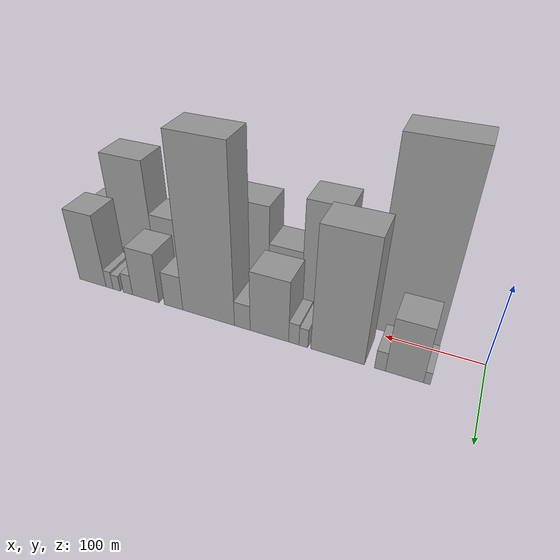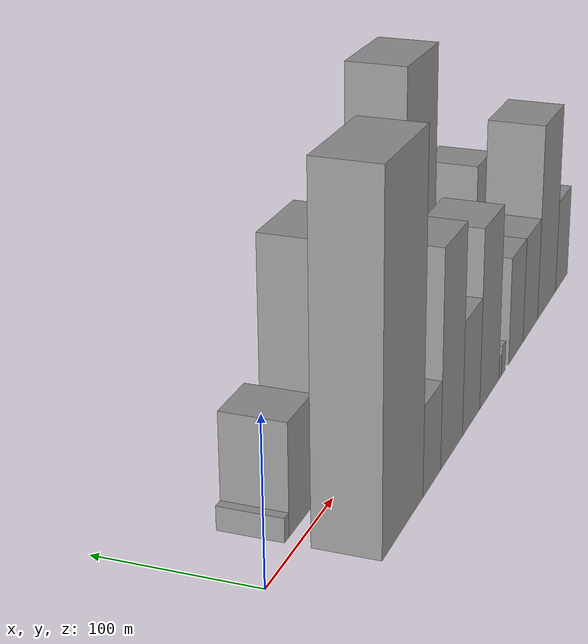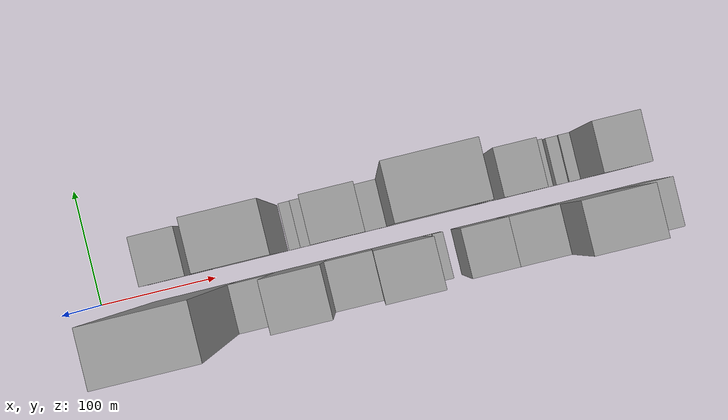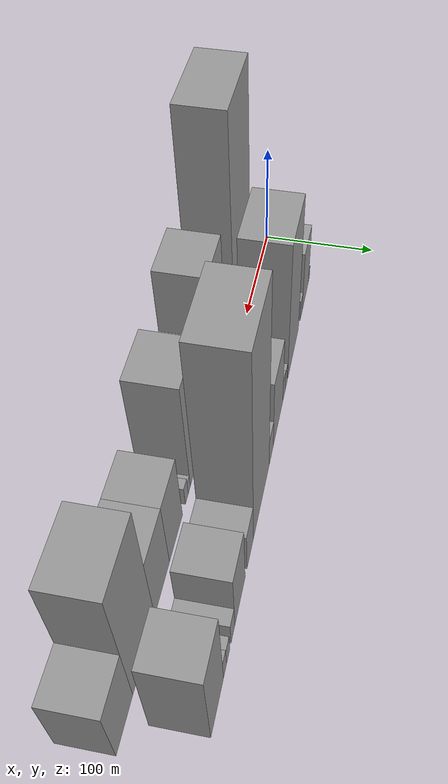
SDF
<sdf version="1.6">
 <world name="default">
  <scene>
   <sky><clouds><speed>12</speed></clouds></sky>
   <ambient>0.4 0.4 0.4 1</ambient>
   <background>0.7 0.7 0.7 1</background>
   <shadows>1</shadows>
  </scene>
  <gravity>0 0 -9.8066</gravity>
  <magnetic_field>6e-06 2.3e-05 -4.2e-05</magnetic_field>
  <physics default="0" name="default_physics" type="ode">
   <ode>
    <solver>
     <type>quick</type>
     <iters>10</iters>
     <sor>1.0</sor>
     <use_dynamic_moi_rescaling>0</use_dynamic_moi_rescaling>
    </solver>
    <constraints>
     <cfm>0</cfm>
     <erp>0.2</erp>
     <contact_max_correcting_vel>100</contact_max_correcting_vel>
     <contact_surface_layer>0.001</contact_surface_layer>
    </constraints>
   </ode>
   <max_step_size>0.004</max_step_size>
   <real_time_factor>1</real_time_factor>
   <real_time_update_rate>250</real_time_update_rate>
  </physics>
  <light name="sun" type="directional">
   <pose>0 0 10 0 0 0</pose>
   <diffuse>0.8 0.8 0.8 1</diffuse>
   <specular>0.2 0.2 0.2 1</specular>
   <attenuation>
    <range>1000</range>
    <constant>0.9</constant>
    <linear>0.01</linear>
    <quadratic>0.001</quadratic>
   </attenuation>
   <direction>-0.5 0.1 -0.9</direction>
  </light>
  <model name="building_1">
   <static>1</static>
   <pose>49.1880 27.5000 0 0.000000 0.000000 1.570796</pose>
   <link name="link">
    <pose>0 0 7.50 0 0 0</pose>
    <collision name="collision"><geometry><box><size>40.0000 6.3760 15.0000</size></box></geometry></collision>
    <visual name="visual">
     <cast_shadows>0</cast_shadows>
     <geometry><box><size>40.0000 6.3760 15.0000</size></box></geometry>
     <material>
      <script>
       <uri>model://grey_wall/materials/scripts</uri>
       <uri>model://grey_wall/materials/textures</uri>
       <name>vrc/grey_wall</name>
      </script>
     </material>
    </visual>
   </link>
  </model>
  <model name="building_2">
   <static>1</static>
   <pose>70.7179 27.5000 0 0.000000 0.000000 1.570796</pose>
   <link name="link">
    <pose>0 0 34.50 0 0 0</pose>
    <collision name="collision"><geometry><box><size>40.0000 36.6837 69.0000</size></box></geometry></collision>
    <visual name="visual">
     <cast_shadows>0</cast_shadows>
     <geometry><box><size>40.0000 36.6837 69.0000</size></box></geometry>
     <material>
      <script>
       <uri>model://grey_wall/materials/scripts</uri>
       <uri>model://grey_wall/materials/textures</uri>
       <name>vrc/grey_wall</name>
      </script>
     </material>
    </visual>
   </link>
  </model>
  <model name="building_3">
   <static>1</static>
   <pose>94.4982 27.5000 0 0.000000 0.000000 1.570796</pose>
   <link name="link">
    <pose>0 0 12.00 0 0 0</pose>
    <collision name="collision"><geometry><box><size>40.0000 10.8769 24.0000</size></box></geometry></collision>
    <visual name="visual">
     <cast_shadows>0</cast_shadows>
     <geometry><box><size>40.0000 10.8769 24.0000</size></box></geometry>
     <material>
      <script>
       <uri>model://grey_wall/materials/scripts</uri>
       <uri>model://grey_wall/materials/textures</uri>
       <name>vrc/grey_wall</name>
      </script>
     </material>
    </visual>
   </link>
  </model>
  <model name="building_4">
   <static>1</static>
   <pose>137.9795 27.5000 0 0.000000 0.000000 1.570796</pose>
   <link name="link">
    <pose>0 0 75.00 0 0 0</pose>
    <collision name="collision"><geometry><box><size>40.0000 56.0856 150.0000</size></box></geometry></collision>
    <visual name="visual">
     <cast_shadows>0</cast_shadows>
     <geometry><box><size>40.0000 56.0856 150.0000</size></box></geometry>
     <material>
      <script>
       <uri>model://grey_wall/materials/scripts</uri>
       <uri>model://grey_wall/materials/textures</uri>
       <name>vrc/grey_wall</name>
      </script>
     </material>
    </visual>
   </link>
  </model>
  <model name="building_5">
   <static>1</static>
   <pose>173.9048 27.5000 0 0.000000 0.000000 1.570796</pose>
   <link name="link">
    <pose>0 0 12.00 0 0 0</pose>
    <collision name="collision"><geometry><box><size>40.0000 9.7650 24.0000</size></box></geometry></collision>
    <visual name="visual">
     <cast_shadows>0</cast_shadows>
     <geometry><box><size>40.0000 9.7650 24.0000</size></box></geometry>
     <material>
      <script>
       <uri>model://grey_wall/materials/scripts</uri>
       <uri>model://grey_wall/materials/textures</uri>
       <name>vrc/grey_wall</name>
      </script>
     </material>
    </visual>
   </link>
  </model>
  <model name="building_6">
   <static>1</static>
   <pose>184.4624 27.5000 0 0.000000 0.000000 1.570796</pose>
   <link name="link">
    <pose>0 0 13.50 0 0 0</pose>
    <collision name="collision"><geometry><box><size>40.0000 11.3502 27.0000</size></box></geometry></collision>
    <visual name="visual">
     <cast_shadows>0</cast_shadows>
     <geometry><box><size>40.0000 11.3502 27.0000</size></box></geometry>
     <material>
      <script>
       <uri>model://grey_wall/materials/scripts</uri>
       <uri>model://grey_wall/materials/textures</uri>
       <name>vrc/grey_wall</name>
      </script>
     </material>
    </visual>
   </link>
  </model>
  <model name="building_7">
   <static>1</static>
   <pose>211.8677 27.5000 0 0.000000 0.000000 1.570796</pose>
   <link name="link">
    <pose>0 0 39.00 0 0 0</pose>
    <collision name="collision"><geometry><box><size>40.0000 43.4605 78.0000</size></box></geometry></collision>
    <visual name="visual">
     <cast_shadows>0</cast_shadows>
     <geometry><box><size>40.0000 43.4605 78.0000</size></box></geometry>
     <material>
      <script>
       <uri>model://grey_wall/materials/scripts</uri>
       <uri>model://grey_wall/materials/textures</uri>
       <name>vrc/grey_wall</name>
      </script>
     </material>
    </visual>
   </link>
  </model>
  <model name="building_8">
   <static>1</static>
   <pose>242.7476 27.5000 0 0.000000 0.000000 1.570796</pose>
   <link name="link">
    <pose>0 0 16.50 0 0 0</pose>
    <collision name="collision"><geometry><box><size>40.0000 18.2993 33.0000</size></box></geometry></collision>
    <visual name="visual">
     <cast_shadows>0</cast_shadows>
     <geometry><box><size>40.0000 18.2993 33.0000</size></box></geometry>
     <material>
      <script>
       <uri>model://grey_wall/materials/scripts</uri>
       <uri>model://grey_wall/materials/textures</uri>
       <name>vrc/grey_wall</name>
      </script>
     </material>
    </visual>
   </link>
  </model>
  <model name="building_9">
   <static>1</static>
   <pose>283.5393 27.5000 0 0.000000 0.000000 1.570796</pose>
   <link name="link">
    <pose>0 0 105.00 0 0 0</pose>
    <collision name="collision"><geometry><box><size>40.0000 63.2841 210.0000</size></box></geometry></collision>
    <visual name="visual">
     <cast_shadows>0</cast_shadows>
     <geometry><box><size>40.0000 63.2841 210.0000</size></box></geometry>
     <material>
      <script>
       <uri>model://grey_wall/materials/scripts</uri>
       <uri>model://grey_wall/materials/textures</uri>
       <name>vrc/grey_wall</name>
      </script>
     </material>
    </visual>
   </link>
  </model>
  <model name="building_10">
   <static>1</static>
   <pose>326.9958 27.5000 0 0.000000 0.000000 1.570796</pose>
   <link name="link">
    <pose>0 0 22.50 0 0 0</pose>
    <collision name="collision"><geometry><box><size>40.0000 23.6289 45.0000</size></box></geometry></collision>
    <visual name="visual">
     <cast_shadows>0</cast_shadows>
     <geometry><box><size>40.0000 23.6289 45.0000</size></box></geometry>
     <material>
      <script>
       <uri>model://grey_wall/materials/scripts</uri>
       <uri>model://grey_wall/materials/textures</uri>
       <name>vrc/grey_wall</name>
      </script>
     </material>
    </visual>
   </link>
  </model>
  <model name="building_11">
   <static>1</static>
   <pose>363.4065 27.5000 0 0.000000 0.000000 1.570796</pose>
   <link name="link">
    <pose>0 0 33.00 0 0 0</pose>
    <collision name="collision"><geometry><box><size>40.0000 35.1926 66.0000</size></box></geometry></collision>
    <visual name="visual">
     <cast_shadows>0</cast_shadows>
     <geometry><box><size>40.0000 35.1926 66.0000</size></box></geometry>
     <material>
      <script>
       <uri>model://grey_wall/materials/scripts</uri>
       <uri>model://grey_wall/materials/textures</uri>
       <name>vrc/grey_wall</name>
      </script>
     </material>
    </visual>
   </link>
  </model>
  <model name="building_12">
   <static>1</static>
   <pose>387.3186 27.5000 0 0.000000 0.000000 1.570796</pose>
   <link name="link">
    <pose>0 0 13.50 0 0 0</pose>
    <collision name="collision"><geometry><box><size>40.0000 12.6315 27.0000</size></box></geometry></collision>
    <visual name="visual">
     <cast_shadows>0</cast_shadows>
     <geometry><box><size>40.0000 12.6315 27.0000</size></box></geometry>
     <material>
      <script>
       <uri>model://grey_wall/materials/scripts</uri>
       <uri>model://grey_wall/materials/textures</uri>
       <name>vrc/grey_wall</name>
      </script>
     </material>
    </visual>
   </link>
  </model>
  <model name="building_13">
   <static>1</static>
   <pose>402.7633 27.5000 0 0.000000 0.000000 1.570796</pose>
   <link name="link">
    <pose>0 0 10.50 0 0 0</pose>
    <collision name="collision"><geometry><box><size>40.0000 10.2580 21.0000</size></box></geometry></collision>
    <visual name="visual">
     <cast_shadows>0</cast_shadows>
     <geometry><box><size>40.0000 10.2580 21.0000</size></box></geometry>
     <material>
      <script>
       <uri>model://grey_wall/materials/scripts</uri>
       <uri>model://grey_wall/materials/textures</uri>
       <name>vrc/grey_wall</name>
      </script>
     </material>
    </visual>
   </link>
  </model>
  <model name="building_14">
   <static>1</static>
   <pose>412.7089 27.5000 0 0.000000 0.000000 1.570796</pose>
   <link name="link">
    <pose>0 0 12.00 0 0 0</pose>
    <collision name="collision"><geometry><box><size>40.0000 9.6331 24.0000</size></box></geometry></collision>
    <visual name="visual">
     <cast_shadows>0</cast_shadows>
     <geometry><box><size>40.0000 9.6331 24.0000</size></box></geometry>
     <material>
      <script>
       <uri>model://grey_wall/materials/scripts</uri>
       <uri>model://grey_wall/materials/textures</uri>
       <name>vrc/grey_wall</name>
      </script>
     </material>
    </visual>
   </link>
  </model>
  <model name="building_15">
   <static>1</static>
   <pose>436.3256 27.5000 0 0.000000 0.000000 1.570796</pose>
   <link name="link">
    <pose>0 0 48.00 0 0 0</pose>
    <collision name="collision"><geometry><box><size>40.0000 37.6004 96.0000</size></box></geometry></collision>
    <visual name="visual">
     <cast_shadows>0</cast_shadows>
     <geometry><box><size>40.0000 37.6004 96.0000</size></box></geometry>
     <material>
      <script>
       <uri>model://grey_wall/materials/scripts</uri>
       <uri>model://grey_wall/materials/textures</uri>
       <name>vrc/grey_wall</name>
      </script>
     </material>
    </visual>
   </link>
  </model>
  <model name="building_16">
   <static>1</static>
   <pose>81.8633 -27.5000 0 0.000000 0.000000 1.570796</pose>
   <link name="link">
    <pose>0 0 109.50 0 0 0</pose>
    <collision name="collision"><geometry><box><size>40.0000 71.7267 219.0000</size></box></geometry></collision>
    <visual name="visual">
     <cast_shadows>0</cast_shadows>
     <geometry><box><size>40.0000 71.7267 219.0000</size></box></geometry>
     <material>
      <script>
       <uri>model://grey_wall/materials/scripts</uri>
       <uri>model://grey_wall/materials/textures</uri>
       <name>vrc/grey_wall</name>
      </script>
     </material>
    </visual>
   </link>
  </model>
  <model name="building_17">
   <static>1</static>
   <pose>134.7745 -27.5000 0 0.000000 0.000000 1.570796</pose>
   <link name="link">
    <pose>0 0 28.50 0 0 0</pose>
    <collision name="collision"><geometry><box><size>40.0000 34.0956 57.0000</size></box></geometry></collision>
    <visual name="visual">
     <cast_shadows>0</cast_shadows>
     <geometry><box><size>40.0000 34.0956 57.0000</size></box></geometry>
     <material>
      <script>
       <uri>model://grey_wall/materials/scripts</uri>
       <uri>model://grey_wall/materials/textures</uri>
       <name>vrc/grey_wall</name>
      </script>
     </material>
    </visual>
   </link>
  </model>
  <model name="building_18">
   <static>1</static>
   <pose>174.4145 -27.5000 0 0.000000 0.000000 1.570796</pose>
   <link name="link">
    <pose>0 0 69.00 0 0 0</pose>
    <collision name="collision"><geometry><box><size>40.0000 45.1845 138.0000</size></box></geometry></collision>
    <visual name="visual">
     <cast_shadows>0</cast_shadows>
     <geometry><box><size>40.0000 45.1845 138.0000</size></box></geometry>
     <material>
      <script>
       <uri>model://grey_wall/materials/scripts</uri>
       <uri>model://grey_wall/materials/textures</uri>
       <name>vrc/grey_wall</name>
      </script>
     </material>
    </visual>
   </link>
  </model>
  <model name="building_19">
   <static>1</static>
   <pose>216.2079 -27.5000 0 0.000000 0.000000 1.570796</pose>
   <link name="link">
    <pose>0 0 37.50 0 0 0</pose>
    <collision name="collision"><geometry><box><size>40.0000 38.4022 75.0000</size></box></geometry></collision>
    <visual name="visual">
     <cast_shadows>0</cast_shadows>
     <geometry><box><size>40.0000 38.4022 75.0000</size></box></geometry>
     <material>
      <script>
       <uri>model://grey_wall/materials/scripts</uri>
       <uri>model://grey_wall/materials/textures</uri>
       <name>vrc/grey_wall</name>
      </script>
     </material>
    </visual>
   </link>
  </model>
  <model name="building_20">
   <static>1</static>
   <pose>258.1465 -27.5000 0 0.000000 0.000000 1.570796</pose>
   <link name="link">
    <pose>0 0 60.00 0 0 0</pose>
    <collision name="collision"><geometry><box><size>40.0000 45.4749 120.0000</size></box></geometry></collision>
    <visual name="visual">
     <cast_shadows>0</cast_shadows>
     <geometry><box><size>40.0000 45.4749 120.0000</size></box></geometry>
     <material>
      <script>
       <uri>model://grey_wall/materials/scripts</uri>
       <uri>model://grey_wall/materials/textures</uri>
       <name>vrc/grey_wall</name>
      </script>
     </material>
    </visual>
   </link>
  </model>
  <model name="building_21">
   <static>1</static>
   <pose>284.1670 -27.5000 0 0.000000 0.000000 1.570796</pose>
   <link name="link">
    <pose>0 0 7.50 0 0 0</pose>
    <collision name="collision"><geometry><box><size>40.0000 6.5662 15.0000</size></box></geometry></collision>
    <visual name="visual">
     <cast_shadows>0</cast_shadows>
     <geometry><box><size>40.0000 6.5662 15.0000</size></box></geometry>
     <material>
      <script>
       <uri>model://grey_wall/materials/scripts</uri>
       <uri>model://grey_wall/materials/textures</uri>
       <name>vrc/grey_wall</name>
      </script>
     </material>
    </visual>
   </link>
  </model>
  <model name="building_22">
   <static>1</static>
   <pose>291.9953 -27.5000 0 0.000000 0.000000 1.570796</pose>
   <link name="link">
    <pose>0 0 10.50 0 0 0</pose>
    <collision name="collision"><geometry><box><size>40.0000 9.0904 21.0000</size></box></geometry></collision>
    <visual name="visual">
     <cast_shadows>0</cast_shadows>
     <geometry><box><size>40.0000 9.0904 21.0000</size></box></geometry>
     <material>
      <script>
       <uri>model://grey_wall/materials/scripts</uri>
       <uri>model://grey_wall/materials/textures</uri>
       <name>vrc/grey_wall</name>
      </script>
     </material>
    </visual>
   </link>
  </model>
  <model name="building_23">
   <static>1</static>
   <pose>324.7056 -27.5000 0 0.000000 0.000000 1.570796</pose>
   <link name="link">
    <pose>0 0 37.50 0 0 0</pose>
    <collision name="collision"><geometry><box><size>40.0000 38.3304 75.0000</size></box></geometry></collision>
    <visual name="visual">
     <cast_shadows>0</cast_shadows>
     <geometry><box><size>40.0000 38.3304 75.0000</size></box></geometry>
     <material>
      <script>
       <uri>model://grey_wall/materials/scripts</uri>
       <uri>model://grey_wall/materials/textures</uri>
       <name>vrc/grey_wall</name>
      </script>
     </material>
    </visual>
   </link>
  </model>
  <model name="building_24">
   <static>1</static>
   <pose>364.1659 -27.5000 0 0.000000 0.000000 1.570796</pose>
   <link name="link">
    <pose>0 0 37.50 0 0 0</pose>
    <collision name="collision"><geometry><box><size>40.0000 40.5902 75.0000</size></box></geometry></collision>
    <visual name="visual">
     <cast_shadows>0</cast_shadows>
     <geometry><box><size>40.0000 40.5902 75.0000</size></box></geometry>
     <material>
      <script>
       <uri>model://grey_wall/materials/scripts</uri>
       <uri>model://grey_wall/materials/textures</uri>
       <name>vrc/grey_wall</name>
      </script>
     </material>
    </visual>
   </link>
  </model>
  <model name="building_25">
   <static>1</static>
   <pose>411.5635 -27.5000 0 0.000000 0.000000 1.570796</pose>
   <link name="link">
    <pose>0 0 70.50 0 0 0</pose>
    <collision name="collision"><geometry><box><size>40.0000 54.2051 141.0000</size></box></geometry></collision>
    <visual name="visual">
     <cast_shadows>0</cast_shadows>
     <geometry><box><size>40.0000 54.2051 141.0000</size></box></geometry>
     <material>
      <script>
       <uri>model://grey_wall/materials/scripts</uri>
       <uri>model://grey_wall/materials/textures</uri>
       <name>vrc/grey_wall</name>
      </script>
     </material>
    </visual>
   </link>
  </model>
  <model name="building_26">
   <static>1</static>
   <pose>457.5677 -27.5000 0 0.000000 0.000000 1.570796</pose>
   <link name="link">
    <pose>0 0 34.50 0 0 0</pose>
    <collision name="collision"><geometry><box><size>40.0000 37.8032 69.0000</size></box></geometry></collision>
    <visual name="visual">
     <cast_shadows>0</cast_shadows>
     <geometry><box><size>40.0000 37.8032 69.0000</size></box></geometry>
     <material>
      <script>
       <uri>model://grey_wall/materials/scripts</uri>
       <uri>model://grey_wall/materials/textures</uri>
       <name>vrc/grey_wall</name>
      </script>
     </material>
    </visual>
   </link>
  </model>
 </world>
</sdf>
